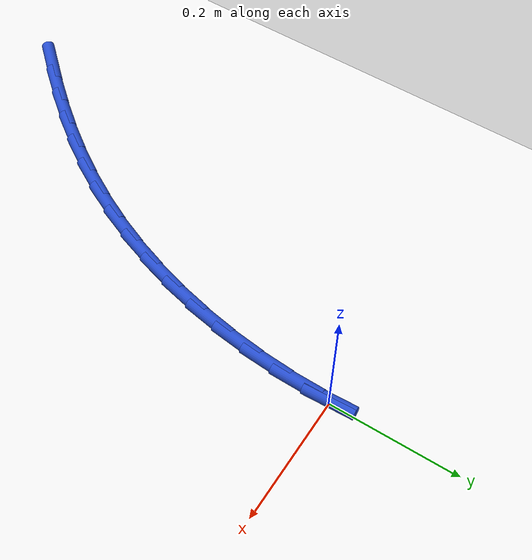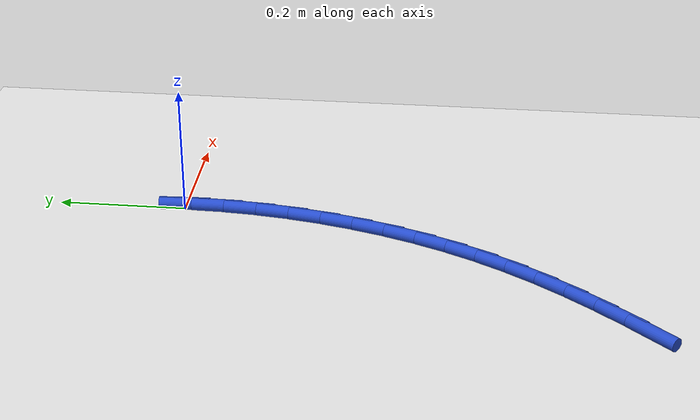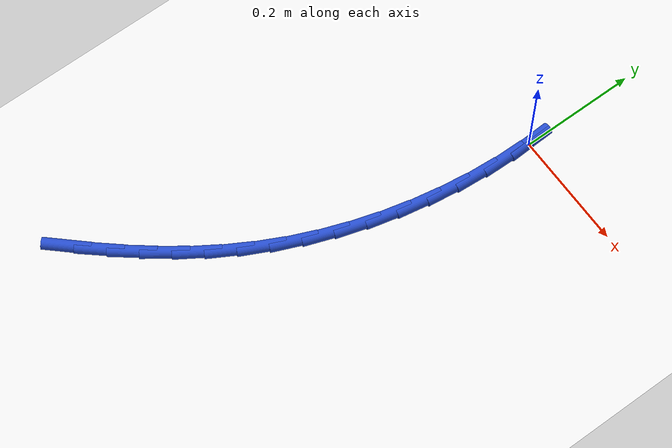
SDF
<sdf version="1.6">
 <world name="default">
  <model name="ground_plane">
   <static>1</static>
   <link name="link">
    <collision name="collision">
     <geometry><plane><normal>0 0 1</normal><size>100 100</size></plane></geometry>
     <surface><friction><ode><mu>100</mu><mu2>50</mu2></ode></friction></surface>
    </collision>
    <visual name="visual">
     <cast_shadows>0</cast_shadows>
     <geometry><plane><normal>0 0 1</normal><size>100 100</size></plane></geometry>
     <material>
      <script><uri>file://media/materials/scripts/gazebo.material</uri><name>Gazebo/WhiteGlow</name></script>
     </material>
    </visual>
   </link>
  </model>
  <model name="line">
   <link name="link_0">
    <pose>5.898059818321144e-17 4.163336342344337e-17 0.01 0 1.57 -1.5320431930649714</pose>
    <collision name="collision">
     <geometry><cylinder><radius>0.01</radius><length>0.08</length></cylinder></geometry>
    </collision>
    <visual name="visual">
     <material>
      <script><name>Gazebo/Blue</name><uri>file://media/materials/scripts/gazebo.material</uri></script>
     </material>
     <geometry><cylinder><radius>0.01</radius><length>0.08</length></cylinder></geometry>
    </visual>
   </link>
   <link name="link_125">
    <pose>-0.29148183738702577 -0.6973996377401606 0.01 0 1.57 0.8258533035163748</pose>
    <collision name="collision">
     <geometry><cylinder><radius>0.01</radius><length>0.08</length></cylinder></geometry>
    </collision>
    <visual name="visual">
     <material>
      <script><name>Gazebo/Blue</name><uri>file://media/materials/scripts/gazebo.material</uri></script>
     </material>
     <geometry><cylinder><radius>0.01</radius><length>0.08</length></cylinder></geometry>
    </visual>
   </link>
   <link name="link_126">
    <pose>-0.2559798860599387 -0.6589024048231961 0.01 0 1.57 0.8607488200662652</pose>
    <collision name="collision">
     <geometry><cylinder><radius>0.01</radius><length>0.08</length></cylinder></geometry>
    </collision>
    <visual name="visual">
     <material>
      <script><name>Gazebo/Blue</name><uri>file://media/materials/scripts/gazebo.material</uri></script>
     </material>
     <geometry><cylinder><radius>0.01</radius><length>0.08</length></cylinder></geometry>
    </visual>
   </link>
   <link name="link_127">
    <pose>-0.22225901179979013 -0.6196743545085334 0.01 0 1.57 0.9011758762857454</pose>
    <collision name="collision">
     <geometry><cylinder><radius>0.01</radius><length>0.08</length></cylinder></geometry>
    </collision>
    <visual name="visual">
     <material>
      <script><name>Gazebo/Blue</name><uri>file://media/materials/scripts/gazebo.material</uri></script>
     </material>
     <geometry><cylinder><radius>0.01</radius><length>0.08</length></cylinder></geometry>
    </visual>
   </link>
   <link name="link_128">
    <pose>-0.19046096700378395 -0.5795068766717547 0.01 0 1.57 0.9469918233144071</pose>
    <collision name="collision">
     <geometry><cylinder><radius>0.01</radius><length>0.08</length></cylinder></geometry>
    </collision>
    <visual name="visual">
     <material>
      <script><name>Gazebo/Blue</name><uri>file://media/materials/scripts/gazebo.material</uri></script>
     </material>
     <geometry><cylinder><radius>0.01</radius><length>0.08</length></cylinder></geometry>
    </visual>
   </link>
   <link name="link_129">
    <pose>-0.16072750406912437 -0.5381913611884431 0.01 0 1.57 0.9978847783535109</pose>
    <collision name="collision">
     <geometry><cylinder><radius>0.01</radius><length>0.08</length></cylinder></geometry>
    </collision>
    <visual name="visual">
     <material>
      <script><name>Gazebo/Blue</name><uri>file://media/materials/scripts/gazebo.material</uri></script>
     </material>
     <geometry><cylinder><radius>0.01</radius><length>0.08</length></cylinder></geometry>
    </visual>
   </link>
   <link name="link_130">
    <pose>-0.13320037539301566 -0.4955191979341815 0.01 0 1.57 1.0533471592427064</pose>
    <collision name="collision">
     <geometry><cylinder><radius>0.01</radius><length>0.08</length></cylinder></geometry>
    </collision>
    <visual name="visual">
     <material>
      <script><name>Gazebo/Blue</name><uri>file://media/materials/scripts/gazebo.material</uri></script>
     </material>
     <geometry><cylinder><radius>0.01</radius><length>0.08</length></cylinder></geometry>
    </visual>
   </link>
   <link name="link_131">
    <pose>-0.10802133337266169 -0.45128177678455206 0.01 0 1.57 1.1124348670436357</pose>
    <collision name="collision">
     <geometry><cylinder><radius>0.01</radius><length>0.08</length></cylinder></geometry>
    </collision>
    <visual name="visual">
     <material>
      <script><name>Gazebo/Blue</name><uri>file://media/materials/scripts/gazebo.material</uri></script>
     </material>
     <geometry><cylinder><radius>0.01</radius><length>0.08</length></cylinder></geometry>
    </visual>
   </link>
   <link name="link_132">
    <pose>-0.08532828815131846 -0.40528947755527067 0.01 0 1.57 1.171367099329499</pose>
    <collision name="collision">
     <geometry><cylinder><radius>0.01</radius><length>0.08</length></cylinder></geometry>
    </collision>
    <visual name="visual">
     <material>
      <script><name>Gazebo/Blue</name><uri>file://media/materials/scripts/gazebo.material</uri></script>
     </material>
     <geometry><cylinder><radius>0.01</radius><length>0.08</length></cylinder></geometry>
    </visual>
   </link>
   <link name="link_133">
    <pose>-0.0652053731153651 -0.3576184660842777 0.01 0 1.57 1.2281268723139989</pose>
    <collision name="collision">
     <geometry><cylinder><radius>0.01</radius><length>0.08</length></cylinder></geometry>
    </collision>
    <visual name="visual">
     <material>
      <script><name>Gazebo/Blue</name><uri>file://media/materials/scripts/gazebo.material</uri></script>
     </material>
     <geometry><cylinder><radius>0.01</radius><length>0.08</length></cylinder></geometry>
    </visual>
   </link>
   <link name="link_134">
    <pose>-0.04769714546458048 -0.3085405093915618 0.01 0 1.57 1.2832301813922384</pose>
    <collision name="collision">
     <geometry><cylinder><radius>0.01</radius><length>0.08</length></cylinder></geometry>
    </collision>
    <visual name="visual">
     <material>
      <script><name>Gazebo/Blue</name><uri>file://media/materials/scripts/gazebo.material</uri></script>
     </material>
     <geometry><cylinder><radius>0.01</radius><length>0.08</length></cylinder></geometry>
    </visual>
   </link>
   <link name="link_135">
    <pose>-0.032847244223099856 -0.2583319124846388 0.01 0 1.57 1.337236726995633</pose>
    <collision name="collision">
     <geometry><cylinder><radius>0.01</radius><length>0.08</length></cylinder></geometry>
    </collision>
    <visual name="visual">
     <material>
      <script><name>Gazebo/Blue</name><uri>file://media/materials/scripts/gazebo.material</uri></script>
     </material>
     <geometry><cylinder><radius>0.01</radius><length>0.08</length></cylinder></geometry>
    </visual>
   </link>
   <link name="link_136">
    <pose>-0.020699308415059042 -0.20726898037102626 0.01 0 1.57 1.3906979280650178</pose>
    <collision name="collision">
     <geometry><cylinder><radius>0.01</radius><length>0.08</length></cylinder></geometry>
    </collision>
    <visual name="visual">
     <material>
      <script><name>Gazebo/Blue</name><uri>file://media/materials/scripts/gazebo.material</uri></script>
     </material>
     <geometry><cylinder><radius>0.01</radius><length>0.08</length></cylinder></geometry>
    </visual>
   </link>
   <link name="link_137">
    <pose>-0.011296977064593244 -0.1556280180582399 0.01 0 1.57 1.4441625135217515</pose>
    <collision name="collision">
     <geometry><cylinder><radius>0.01</radius><length>0.08</length></cylinder></geometry>
    </collision>
    <visual name="visual">
     <material>
      <script><name>Gazebo/Blue</name><uri>file://media/materials/scripts/gazebo.material</uri></script>
     </material>
     <geometry><cylinder><radius>0.01</radius><length>0.08</length></cylinder></geometry>
    </visual>
   </link>
   <link name="link_138">
    <pose>-0.00468388919583785 -0.10368533055379595 0.01 0 1.57 1.498183347396034</pose>
    <collision name="collision">
     <geometry><cylinder><radius>0.01</radius><length>0.08</length></cylinder></geometry>
    </collision>
    <visual name="visual">
     <material>
      <script><name>Gazebo/Blue</name><uri>file://media/materials/scripts/gazebo.material</uri></script>
     </material>
     <geometry><cylinder><radius>0.01</radius><length>0.08</length></cylinder></geometry>
    </visual>
   </link>
   <link name="link_139">
    <pose>-0.0009036838329282842 -0.05171722286521081 0.01 0 1.57 1.553324548009525</pose>
    <collision name="collision">
     <geometry><cylinder><radius>0.01</radius><length>0.08</length></cylinder></geometry>
    </collision>
    <visual name="visual">
     <material>
      <script><name>Gazebo/Blue</name><uri>file://media/materials/scripts/gazebo.material</uri></script>
     </material>
     <geometry><cylinder><radius>0.01</radius><length>0.08</length></cylinder></geometry>
    </visual>
   </link>
   <link name="link_140">
    <pose>3.9898639947466563e-17 -5.551115123125783e-17 0.01 0 1.57 -1.531424703767764</pose>
    <collision name="collision">
     <geometry><cylinder><radius>0.01</radius><length>0.08</length></cylinder></geometry>
    </collision>
    <visual name="visual">
     <material>
      <script><name>Gazebo/Blue</name><uri>file://media/materials/scripts/gazebo.material</uri></script>
     </material>
     <geometry><cylinder><radius>0.01</radius><length>0.08</length></cylinder></geometry>
    </visual>
   </link>
  </model>
 </world>
</sdf>
